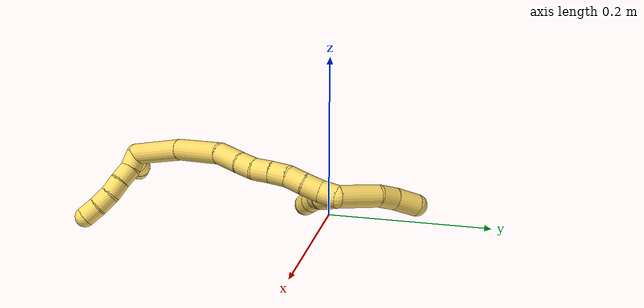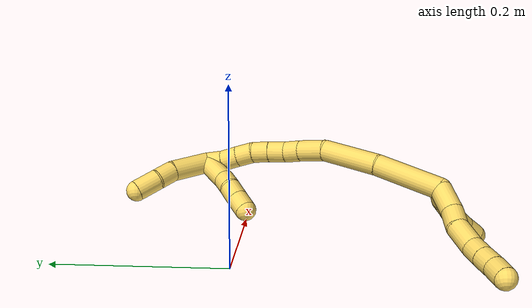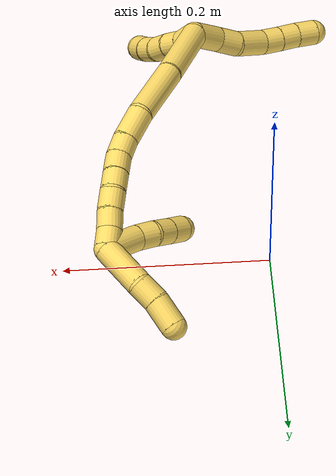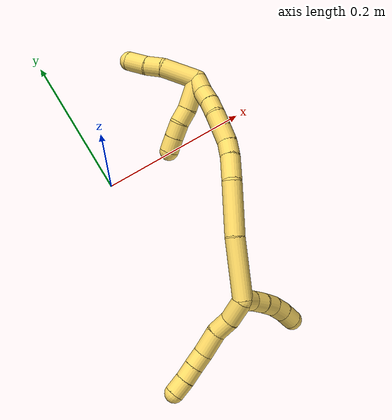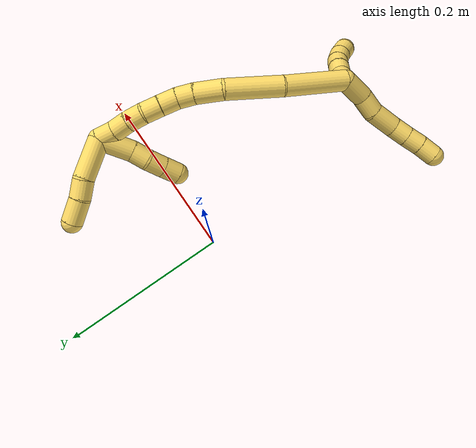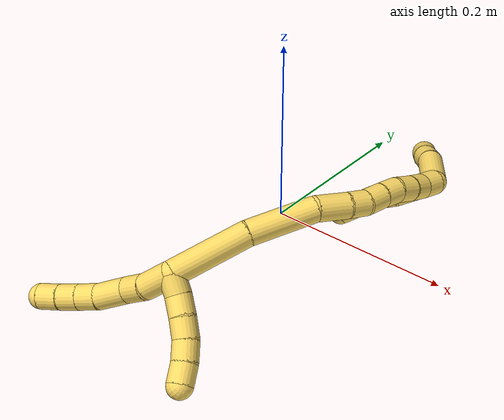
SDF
<sdf version="1.7">
 <world name="default">
  <model name="5">
   <static>0</static>
   <link name="5">
    <collision name="collision-cylinder-e_1_2_8">
     <pose>-0.003002 -0.004771 -0.014952 2.83273 -0.189 -1.09383</pose>
     <geometry><cylinder><radius>0.0125</radius><length>0.031958</length></cylinder></geometry>
     <surface>
      <friction><ode><mu>1.16</mu><mu2>1.16</mu2><slip1>0</slip1><slip2>0</slip2></ode></friction>
      <contact><ode><kp>1e+06</kp><kd>1</kd><max_vel>0</max_vel><min_depth>0.001</min_depth></ode></contact>
     </surface>
    </collision>
    <visual name="visual-cylinder-e_1_2_8">
     <pose>-0.003002 -0.004771 -0.014952 2.83273 -0.189 -1.09383</pose>
     <geometry><cylinder><radius>0.0125</radius><length>0.031958</length></cylinder></geometry>
     <material><ambient>1 0.858824 0.4 1</ambient></material>
    </visual>
    <collision name="collision-cylinder-e_2_8_9">
     <pose>-0.010518 -0.0109 -0.040922 3.01894 -0.386177 -2.53299</pose>
     <geometry><cylinder><radius>0.0125</radius><length>0.023969</length></cylinder></geometry>
     <surface>
      <friction><ode><mu>1.16</mu><mu2>1.16</mu2><slip1>0</slip1><slip2>0</slip2></ode></friction>
      <contact><ode><kp>1e+06</kp><kd>1</kd><max_vel>0</max_vel><min_depth>0.001</min_depth></ode></contact>
     </surface>
    </collision>
    <visual name="visual-cylinder-e_2_8_9">
     <pose>-0.010518 -0.0109 -0.040922 3.01894 -0.386177 -2.53299</pose>
     <geometry><cylinder><radius>0.0125</radius><length>0.023969</length></cylinder></geometry>
     <material><ambient>1 0.858824 0.4 1</ambient></material>
    </visual>
    <collision name="collision-cylinder-e_3_9_10">
     <pose>-0.021192 -0.018417 -0.065584 2.71754 -0.390413 -1.48593</pose>
     <geometry><cylinder><radius>0.0125</radius><length>0.032373</length></cylinder></geometry>
     <surface>
      <friction><ode><mu>1.16</mu><mu2>1.16</mu2><slip1>0</slip1><slip2>0</slip2></ode></friction>
      <contact><ode><kp>1e+06</kp><kd>1</kd><max_vel>0</max_vel><min_depth>0.001</min_depth></ode></contact>
     </surface>
    </collision>
    <visual name="visual-cylinder-e_3_9_10">
     <pose>-0.021192 -0.018417 -0.065584 2.71754 -0.390413 -1.48593</pose>
     <geometry><cylinder><radius>0.0125</radius><length>0.032373</length></cylinder></geometry>
     <material><ambient>1 0.858824 0.4 1</ambient></material>
    </visual>
    <collision name="collision-cylinder-e_4_10_11">
     <pose>-0.032965 -0.028349 -0.086708 2.67448 -0.590242 -1.81356</pose>
     <geometry><cylinder><radius>0.0125</radius><length>0.02017</length></cylinder></geometry>
     <surface>
      <friction><ode><mu>1.16</mu><mu2>1.16</mu2><slip1>0</slip1><slip2>0</slip2></ode></friction>
      <contact><ode><kp>1e+06</kp><kd>1</kd><max_vel>0</max_vel><min_depth>0.001</min_depth></ode></contact>
     </surface>
    </collision>
    <visual name="visual-cylinder-e_4_10_11">
     <pose>-0.032965 -0.028349 -0.086708 2.67448 -0.590242 -1.81356</pose>
     <geometry><cylinder><radius>0.0125</radius><length>0.02017</length></cylinder></geometry>
     <material><ambient>1 0.858824 0.4 1</ambient></material>
    </visual>
    <collision name="collision-cylinder-e_5_11_12">
     <pose>-0.044213 -0.036155 -0.101467 2.63555 -0.595256 -1.74083</pose>
     <geometry><cylinder><radius>0.0125</radius><length>0.020098</length></cylinder></geometry>
     <surface>
      <friction><ode><mu>1.16</mu><mu2>1.16</mu2><slip1>0</slip1><slip2>0</slip2></ode></friction>
      <contact><ode><kp>1e+06</kp><kd>1</kd><max_vel>0</max_vel><min_depth>0.001</min_depth></ode></contact>
     </surface>
    </collision>
    <visual name="visual-cylinder-e_5_11_12">
     <pose>-0.044213 -0.036155 -0.101467 2.63555 -0.595256 -1.74083</pose>
     <geometry><cylinder><radius>0.0125</radius><length>0.020098</length></cylinder></geometry>
     <material><ambient>1 0.858824 0.4 1</ambient></material>
    </visual>
    <collision name="collision-cylinder-e_6_12_6">
     <pose>-0.056169 -0.043702 -0.116651 2.72336 -0.630958 -1.98853</pose>
     <geometry><cylinder><radius>0.0125</radius><length>0.021431</length></cylinder></geometry>
     <surface>
      <friction><ode><mu>1.16</mu><mu2>1.16</mu2><slip1>0</slip1><slip2>0</slip2></ode></friction>
      <contact><ode><kp>1e+06</kp><kd>1</kd><max_vel>0</max_vel><min_depth>0.001</min_depth></ode></contact>
     </surface>
    </collision>
    <visual name="visual-cylinder-e_6_12_6">
     <pose>-0.056169 -0.043702 -0.116651 2.72336 -0.630958 -1.98853</pose>
     <geometry><cylinder><radius>0.0125</radius><length>0.021431</length></cylinder></geometry>
     <material><ambient>1 0.858824 0.4 1</ambient></material>
    </visual>
    <collision name="collision-cylinder-e_1_2_13">
     <pose>0.009454 -0.001661 -0.002805 2.60694 1.23877 2.40808</pose>
     <geometry><cylinder><radius>0.0125</radius><length>0.02</length></cylinder></geometry>
     <surface>
      <friction><ode><mu>1.16</mu><mu2>1.16</mu2><slip1>0</slip1><slip2>0</slip2></ode></friction>
      <contact><ode><kp>1e+06</kp><kd>1</kd><max_vel>0</max_vel><min_depth>0.001</min_depth></ode></contact>
     </surface>
    </collision>
    <visual name="visual-cylinder-e_1_2_13">
     <pose>0.009454 -0.001661 -0.002805 2.60694 1.23877 2.40808</pose>
     <geometry><cylinder><radius>0.0125</radius><length>0.02</length></cylinder></geometry>
     <material><ambient>1 0.858824 0.4 1</ambient></material>
    </visual>
    <collision name="collision-cylinder-e_2_13_14">
     <pose>0.027996 -0.007276 -0.006939 1.89512 1.14043 1.4569</pose>
     <geometry><cylinder><radius>0.0125</radius><length>0.02</length></cylinder></geometry>
     <surface>
      <friction><ode><mu>1.16</mu><mu2>1.16</mu2><slip1>0</slip1><slip2>0</slip2></ode></friction>
      <contact><ode><kp>1e+06</kp><kd>1</kd><max_vel>0</max_vel><min_depth>0.001</min_depth></ode></contact>
     </surface>
    </collision>
    <visual name="visual-cylinder-e_2_13_14">
     <pose>0.027996 -0.007276 -0.006939 1.89512 1.14043 1.4569</pose>
     <geometry><cylinder><radius>0.0125</radius><length>0.02</length></cylinder></geometry>
     <material><ambient>1 0.858824 0.4 1</ambient></material>
    </visual>
    <collision name="collision-cylinder-e_3_14_15">
     <pose>0.046005 -0.015083 -0.010631 2.12102 1.10187 1.66383</pose>
     <geometry><cylinder><radius>0.0125</radius><length>0.02</length></cylinder></geometry>
     <surface>
      <friction><ode><mu>1.16</mu><mu2>1.16</mu2><slip1>0</slip1><slip2>0</slip2></ode></friction>
      <contact><ode><kp>1e+06</kp><kd>1</kd><max_vel>0</max_vel><min_depth>0.001</min_depth></ode></contact>
     </surface>
    </collision>
    <visual name="visual-cylinder-e_3_14_15">
     <pose>0.046005 -0.015083 -0.010631 2.12102 1.10187 1.66383</pose>
     <geometry><cylinder><radius>0.0125</radius><length>0.02</length></cylinder></geometry>
     <material><ambient>1 0.858824 0.4 1</ambient></material>
    </visual>
    <collision name="collision-cylinder-e_4_15_16">
     <pose>0.062695 -0.024665 -0.0156 1.9976 0.889915 1.27504</pose>
     <geometry><cylinder><radius>0.0125</radius><length>0.02</length></cylinder></geometry>
     <surface>
      <friction><ode><mu>1.16</mu><mu2>1.16</mu2><slip1>0</slip1><slip2>0</slip2></ode></friction>
      <contact><ode><kp>1e+06</kp><kd>1</kd><max_vel>0</max_vel><min_depth>0.001</min_depth></ode></contact>
     </surface>
    </collision>
    <visual name="visual-cylinder-e_4_15_16">
     <pose>0.062695 -0.024665 -0.0156 1.9976 0.889915 1.27504</pose>
     <geometry><cylinder><radius>0.0125</radius><length>0.02</length></cylinder></geometry>
     <material><ambient>1 0.858824 0.4 1</ambient></material>
    </visual>
    <collision name="collision-cylinder-e_5_16_5">
     <pose>0.077197 -0.037083 -0.021363 2.01193 0.738481 1.09648</pose>
     <geometry><cylinder><radius>0.0125</radius><length>0.02</length></cylinder></geometry>
     <surface>
      <friction><ode><mu>1.16</mu><mu2>1.16</mu2><slip1>0</slip1><slip2>0</slip2></ode></friction>
      <contact><ode><kp>1e+06</kp><kd>1</kd><max_vel>0</max_vel><min_depth>0.001</min_depth></ode></contact>
     </surface>
    </collision>
    <visual name="visual-cylinder-e_5_16_5">
     <pose>0.077197 -0.037083 -0.021363 2.01193 0.738481 1.09648</pose>
     <geometry><cylinder><radius>0.0125</radius><length>0.02</length></cylinder></geometry>
     <material><ambient>1 0.858824 0.4 1</ambient></material>
    </visual>
    <collision name="collision-cylinder-e_1_2_17">
     <pose>0.004543 0.033744 0.018342 -1.0729 0.117733 -0.070058</pose>
     <geometry><cylinder><radius>0.0125</radius><length>0.077348</length></cylinder></geometry>
     <surface>
      <friction><ode><mu>1.16</mu><mu2>1.16</mu2><slip1>0</slip1><slip2>0</slip2></ode></friction>
      <contact><ode><kp>1e+06</kp><kd>1</kd><max_vel>0</max_vel><min_depth>0.001</min_depth></ode></contact>
     </surface>
    </collision>
    <visual name="visual-cylinder-e_1_2_17">
     <pose>0.004543 0.033744 0.018342 -1.0729 0.117733 -0.070058</pose>
     <geometry><cylinder><radius>0.0125</radius><length>0.077348</length></cylinder></geometry>
     <material><ambient>1 0.858824 0.4 1</ambient></material>
    </visual>
    <collision name="collision-cylinder-e_2_17_18">
     <pose>0.017642 0.096821 0.051384 -1.10626 0.255096 -0.158032</pose>
     <geometry><cylinder><radius>0.0125</radius><length>0.067817</length></cylinder></geometry>
     <surface>
      <friction><ode><mu>1.16</mu><mu2>1.16</mu2><slip1>0</slip1><slip2>0</slip2></ode></friction>
      <contact><ode><kp>1e+06</kp><kd>1</kd><max_vel>0</max_vel><min_depth>0.001</min_depth></ode></contact>
     </surface>
    </collision>
    <visual name="visual-cylinder-e_2_17_18">
     <pose>0.017642 0.096821 0.051384 -1.10626 0.255096 -0.158032</pose>
     <geometry><cylinder><radius>0.0125</radius><length>0.067817</length></cylinder></geometry>
     <material><ambient>1 0.858824 0.4 1</ambient></material>
    </visual>
    <collision name="collision-cylinder-e_3_18_19">
     <pose>0.033153 0.140636 0.069904 -1.31282 0.43474 -0.337059</pose>
     <geometry><cylinder><radius>0.0125</radius><length>0.033024</length></cylinder></geometry>
     <surface>
      <friction><ode><mu>1.16</mu><mu2>1.16</mu2><slip1>0</slip1><slip2>0</slip2></ode></friction>
      <contact><ode><kp>1e+06</kp><kd>1</kd><max_vel>0</max_vel><min_depth>0.001</min_depth></ode></contact>
     </surface>
    </collision>
    <visual name="visual-cylinder-e_3_18_19">
     <pose>0.033153 0.140636 0.069904 -1.31282 0.43474 -0.337059</pose>
     <geometry><cylinder><radius>0.0125</radius><length>0.033024</length></cylinder></geometry>
     <material><ambient>1 0.858824 0.4 1</ambient></material>
    </visual>
    <collision name="collision-cylinder-e_4_19_20">
     <pose>0.043746 0.164507 0.075158 -1.41929 0.365835 -0.315138</pose>
     <geometry><cylinder><radius>0.0125</radius><length>0.020347</length></cylinder></geometry>
     <surface>
      <friction><ode><mu>1.16</mu><mu2>1.16</mu2><slip1>0</slip1><slip2>0</slip2></ode></friction>
      <contact><ode><kp>1e+06</kp><kd>1</kd><max_vel>0</max_vel><min_depth>0.001</min_depth></ode></contact>
     </surface>
    </collision>
    <visual name="visual-cylinder-e_4_19_20">
     <pose>0.043746 0.164507 0.075158 -1.41929 0.365835 -0.315138</pose>
     <geometry><cylinder><radius>0.0125</radius><length>0.020347</length></cylinder></geometry>
     <material><ambient>1 0.858824 0.4 1</ambient></material>
    </visual>
    <collision name="collision-cylinder-e_5_20_21">
     <pose>0.04873 0.184136 0.077895 -1.44425 0.12959 -0.114182</pose>
     <geometry><cylinder><radius>0.0125</radius><length>0.020815</length></cylinder></geometry>
     <surface>
      <friction><ode><mu>1.16</mu><mu2>1.16</mu2><slip1>0</slip1><slip2>0</slip2></ode></friction>
      <contact><ode><kp>1e+06</kp><kd>1</kd><max_vel>0</max_vel><min_depth>0.001</min_depth></ode></contact>
     </surface>
    </collision>
    <visual name="visual-cylinder-e_5_20_21">
     <pose>0.04873 0.184136 0.077895 -1.44425 0.12959 -0.114182</pose>
     <geometry><cylinder><radius>0.0125</radius><length>0.020815</length></cylinder></geometry>
     <material><ambient>1 0.858824 0.4 1</ambient></material>
    </visual>
    <collision name="collision-cylinder-e_6_21_22">
     <pose>0.051686 0.204289 0.080051 -1.48488 0.160462 -0.147287</pose>
     <geometry><cylinder><radius>0.0125</radius><length>0.020164</length></cylinder></geometry>
     <surface>
      <friction><ode><mu>1.16</mu><mu2>1.16</mu2><slip1>0</slip1><slip2>0</slip2></ode></friction>
      <contact><ode><kp>1e+06</kp><kd>1</kd><max_vel>0</max_vel><min_depth>0.001</min_depth></ode></contact>
     </surface>
    </collision>
    <visual name="visual-cylinder-e_6_21_22">
     <pose>0.051686 0.204289 0.080051 -1.48488 0.160462 -0.147287</pose>
     <geometry><cylinder><radius>0.0125</radius><length>0.020164</length></cylinder></geometry>
     <material><ambient>1 0.858824 0.4 1</ambient></material>
    </visual>
    <collision name="collision-cylinder-e_7_22_23">
     <pose>0.056279 0.223921 0.080092 -1.65432 0.296796 -0.322253</pose>
     <geometry><cylinder><radius>0.0125</radius><length>0.020391</length></cylinder></geometry>
     <surface>
      <friction><ode><mu>1.16</mu><mu2>1.16</mu2><slip1>0</slip1><slip2>0</slip2></ode></friction>
      <contact><ode><kp>1e+06</kp><kd>1</kd><max_vel>0</max_vel><min_depth>0.001</min_depth></ode></contact>
     </surface>
    </collision>
    <visual name="visual-cylinder-e_7_22_23">
     <pose>0.056279 0.223921 0.080092 -1.65432 0.296796 -0.322253</pose>
     <geometry><cylinder><radius>0.0125</radius><length>0.020391</length></cylinder></geometry>
     <material><ambient>1 0.858824 0.4 1</ambient></material>
    </visual>
    <collision name="collision-cylinder-e_8_23_24">
     <pose>0.061432 0.243291 0.077695 -1.73331 0.218389 -0.25672</pose>
     <geometry><cylinder><radius>0.0125</radius><length>0.020043</length></cylinder></geometry>
     <surface>
      <friction><ode><mu>1.16</mu><mu2>1.16</mu2><slip1>0</slip1><slip2>0</slip2></ode></friction>
      <contact><ode><kp>1e+06</kp><kd>1</kd><max_vel>0</max_vel><min_depth>0.001</min_depth></ode></contact>
     </surface>
    </collision>
    <visual name="visual-cylinder-e_8_23_24">
     <pose>0.061432 0.243291 0.077695 -1.73331 0.218389 -0.25672</pose>
     <geometry><cylinder><radius>0.0125</radius><length>0.020043</length></cylinder></geometry>
     <material><ambient>1 0.858824 0.4 1</ambient></material>
    </visual>
    <collision name="collision-cylinder-e_9_24_1">
     <pose>0.065485 0.262791 0.076306 -1.55119 0.188885 -0.185239</pose>
     <geometry><cylinder><radius>0.0125</radius><length>0.020052</length></cylinder></geometry>
     <surface>
      <friction><ode><mu>1.16</mu><mu2>1.16</mu2><slip1>0</slip1><slip2>0</slip2></ode></friction>
      <contact><ode><kp>1e+06</kp><kd>1</kd><max_vel>0</max_vel><min_depth>0.001</min_depth></ode></contact>
     </surface>
    </collision>
    <visual name="visual-cylinder-e_9_24_1">
     <pose>0.065485 0.262791 0.076306 -1.55119 0.188885 -0.185239</pose>
     <geometry><cylinder><radius>0.0125</radius><length>0.020052</length></cylinder></geometry>
     <material><ambient>1 0.858824 0.4 1</ambient></material>
    </visual>
    <collision name="collision-cylinder-e_1_1_25">
     <pose>0.060734 0.261097 0.061584 2.48308 -0.338242 -0.926851</pose>
     <geometry><cylinder><radius>0.0125</radius><length>0.039982</length></cylinder></geometry>
     <surface>
      <friction><ode><mu>1.16</mu><mu2>1.16</mu2><slip1>0</slip1><slip2>0</slip2></ode></friction>
      <contact><ode><kp>1e+06</kp><kd>1</kd><max_vel>0</max_vel><min_depth>0.001</min_depth></ode></contact>
     </surface>
    </collision>
    <visual name="visual-cylinder-e_1_1_25">
     <pose>0.060734 0.261097 0.061584 2.48308 -0.338242 -0.926851</pose>
     <geometry><cylinder><radius>0.0125</radius><length>0.039982</length></cylinder></geometry>
     <material><ambient>1 0.858824 0.4 1</ambient></material>
    </visual>
    <collision name="collision-cylinder-e_2_25_26">
     <pose>0.049313 0.24519 0.039045 2.62137 -0.498953 -1.52721</pose>
     <geometry><cylinder><radius>0.0125</radius><length>0.020013</length></cylinder></geometry>
     <surface>
      <friction><ode><mu>1.16</mu><mu2>1.16</mu2><slip1>0</slip1><slip2>0</slip2></ode></friction>
      <contact><ode><kp>1e+06</kp><kd>1</kd><max_vel>0</max_vel><min_depth>0.001</min_depth></ode></contact>
     </surface>
    </collision>
    <visual name="visual-cylinder-e_2_25_26">
     <pose>0.049313 0.24519 0.039045 2.62137 -0.498953 -1.52721</pose>
     <geometry><cylinder><radius>0.0125</radius><length>0.020013</length></cylinder></geometry>
     <material><ambient>1 0.858824 0.4 1</ambient></material>
    </visual>
    <collision name="collision-cylinder-e_3_26_27">
     <pose>0.042122 0.236001 0.022992 2.62201 -0.242569 -0.859894</pose>
     <geometry><cylinder><radius>0.0125</radius><length>0.020004</length></cylinder></geometry>
     <surface>
      <friction><ode><mu>1.16</mu><mu2>1.16</mu2><slip1>0</slip1><slip2>0</slip2></ode></friction>
      <contact><ode><kp>1e+06</kp><kd>1</kd><max_vel>0</max_vel><min_depth>0.001</min_depth></ode></contact>
     </surface>
    </collision>
    <visual name="visual-cylinder-e_3_26_27">
     <pose>0.042122 0.236001 0.022992 2.62201 -0.242569 -0.859894</pose>
     <geometry><cylinder><radius>0.0125</radius><length>0.020004</length></cylinder></geometry>
     <material><ambient>1 0.858824 0.4 1</ambient></material>
    </visual>
    <collision name="collision-cylinder-e_4_27_4">
     <pose>0.037369 0.226176 0.006231 2.60079 -0.237254 -0.812167</pose>
     <geometry><cylinder><radius>0.0125</radius><length>0.020001</length></cylinder></geometry>
     <surface>
      <friction><ode><mu>1.16</mu><mu2>1.16</mu2><slip1>0</slip1><slip2>0</slip2></ode></friction>
      <contact><ode><kp>1e+06</kp><kd>1</kd><max_vel>0</max_vel><min_depth>0.001</min_depth></ode></contact>
     </surface>
    </collision>
    <visual name="visual-cylinder-e_4_27_4">
     <pose>0.037369 0.226176 0.006231 2.60079 -0.237254 -0.812167</pose>
     <geometry><cylinder><radius>0.0125</radius><length>0.020001</length></cylinder></geometry>
     <material><ambient>1 0.858824 0.4 1</ambient></material>
    </visual>
    <collision name="collision-cylinder-e_1_1_28">
     <pose>0.05701 0.292264 0.066869 -2.02691 -0.442474 0.692668</pose>
     <geometry><cylinder><radius>0.0125</radius><length>0.048384</length></cylinder></geometry>
     <surface>
      <friction><ode><mu>1.16</mu><mu2>1.16</mu2><slip1>0</slip1><slip2>0</slip2></ode></friction>
      <contact><ode><kp>1e+06</kp><kd>1</kd><max_vel>0</max_vel><min_depth>0.001</min_depth></ode></contact>
     </surface>
    </collision>
    <visual name="visual-cylinder-e_1_1_28">
     <pose>0.05701 0.292264 0.066869 -2.02691 -0.442474 0.692668</pose>
     <geometry><cylinder><radius>0.0125</radius><length>0.048384</length></cylinder></geometry>
     <material><ambient>1 0.858824 0.4 1</ambient></material>
    </visual>
    <collision name="collision-cylinder-e_2_28_29">
     <pose>0.042609 0.319883 0.050345 -2.28262 -0.36572 0.767501</pose>
     <geometry><cylinder><radius>0.0125</radius><length>0.022604</length></cylinder></geometry>
     <surface>
      <friction><ode><mu>1.16</mu><mu2>1.16</mu2><slip1>0</slip1><slip2>0</slip2></ode></friction>
      <contact><ode><kp>1e+06</kp><kd>1</kd><max_vel>0</max_vel><min_depth>0.001</min_depth></ode></contact>
     </surface>
    </collision>
    <visual name="visual-cylinder-e_2_28_29">
     <pose>0.042609 0.319883 0.050345 -2.28262 -0.36572 0.767501</pose>
     <geometry><cylinder><radius>0.0125</radius><length>0.022604</length></cylinder></geometry>
     <material><ambient>1 0.858824 0.4 1</ambient></material>
    </visual>
    <collision name="collision-cylinder-e_3_29_3">
     <pose>0.035521 0.339394 0.035178 -2.1936 -0.211581 0.408217</pose>
     <geometry><cylinder><radius>0.0125</radius><length>0.029012</length></cylinder></geometry>
     <surface>
      <friction><ode><mu>1.16</mu><mu2>1.16</mu2><slip1>0</slip1><slip2>0</slip2></ode></friction>
      <contact><ode><kp>1e+06</kp><kd>1</kd><max_vel>0</max_vel><min_depth>0.001</min_depth></ode></contact>
     </surface>
    </collision>
    <visual name="visual-cylinder-e_3_29_3">
     <pose>0.035521 0.339394 0.035178 -2.1936 -0.211581 0.408217</pose>
     <geometry><cylinder><radius>0.0125</radius><length>0.029012</length></cylinder></geometry>
     <material><ambient>1 0.858824 0.4 1</ambient></material>
    </visual>
    <collision name="collision-sphere-3">
     <pose>0.032475 0.350914 0.026905 0 -0 0</pose>
     <geometry><sphere><radius>0.0125</radius></sphere></geometry>
     <surface>
      <friction><ode><mu>1.16</mu><mu2>1.16</mu2><slip1>0</slip1><slip2>0</slip2></ode></friction>
      <contact><ode><kp>1e+06</kp><kd>1</kd><max_vel>0</max_vel><min_depth>0.001</min_depth></ode></contact>
     </surface>
    </collision>
    <visual name="visual-sphere-3">
     <pose>0.032475 0.350914 0.026905 0 -0 0</pose>
     <geometry><sphere><radius>0.0125</radius></sphere></geometry>
     <material><ambient>1 0.858824 0.4 1</ambient></material>
    </visual>
    <collision name="collision-sphere-29">
     <pose>0.038568 0.327875 0.043451 0 -0 0</pose>
     <geometry><sphere><radius>0.0125</radius></sphere></geometry>
     <surface>
      <friction><ode><mu>1.16</mu><mu2>1.16</mu2><slip1>0</slip1><slip2>0</slip2></ode></friction>
      <contact><ode><kp>1e+06</kp><kd>1</kd><max_vel>0</max_vel><min_depth>0.001</min_depth></ode></contact>
     </surface>
    </collision>
    <visual name="visual-sphere-29">
     <pose>0.038568 0.327875 0.043451 0 -0 0</pose>
     <geometry><sphere><radius>0.0125</radius></sphere></geometry>
     <material><ambient>1 0.858824 0.4 1</ambient></material>
    </visual>
    <collision name="collision-sphere-28">
     <pose>0.046651 0.311891 0.05724 0 -0 0</pose>
     <geometry><sphere><radius>0.0125</radius></sphere></geometry>
     <surface>
      <friction><ode><mu>1.16</mu><mu2>1.16</mu2><slip1>0</slip1><slip2>0</slip2></ode></friction>
      <contact><ode><kp>1e+06</kp><kd>1</kd><max_vel>0</max_vel><min_depth>0.001</min_depth></ode></contact>
     </surface>
    </collision>
    <visual name="visual-sphere-28">
     <pose>0.046651 0.311891 0.05724 0 -0 0</pose>
     <geometry><sphere><radius>0.0125</radius></sphere></geometry>
     <material><ambient>1 0.858824 0.4 1</ambient></material>
    </visual>
    <collision name="collision-sphere-4">
     <pose>0.035019 0.221172 -0.002102 0 -0 0</pose>
     <geometry><sphere><radius>0.0125</radius></sphere></geometry>
     <surface>
      <friction><ode><mu>1.16</mu><mu2>1.16</mu2><slip1>0</slip1><slip2>0</slip2></ode></friction>
      <contact><ode><kp>1e+06</kp><kd>1</kd><max_vel>0</max_vel><min_depth>0.001</min_depth></ode></contact>
     </surface>
    </collision>
    <visual name="visual-sphere-4">
     <pose>0.035019 0.221172 -0.002102 0 -0 0</pose>
     <geometry><sphere><radius>0.0125</radius></sphere></geometry>
     <material><ambient>1 0.858824 0.4 1</ambient></material>
    </visual>
    <collision name="collision-sphere-27">
     <pose>0.03972 0.23118 0.014565 0 -0 0</pose>
     <geometry><sphere><radius>0.0125</radius></sphere></geometry>
     <surface>
      <friction><ode><mu>1.16</mu><mu2>1.16</mu2><slip1>0</slip1><slip2>0</slip2></ode></friction>
      <contact><ode><kp>1e+06</kp><kd>1</kd><max_vel>0</max_vel><min_depth>0.001</min_depth></ode></contact>
     </surface>
    </collision>
    <visual name="visual-sphere-27">
     <pose>0.03972 0.23118 0.014565 0 -0 0</pose>
     <geometry><sphere><radius>0.0125</radius></sphere></geometry>
     <material><ambient>1 0.858824 0.4 1</ambient></material>
    </visual>
    <collision name="collision-sphere-26">
     <pose>0.044525 0.240822 0.03142 0 -0 0</pose>
     <geometry><sphere><radius>0.0125</radius></sphere></geometry>
     <surface>
      <friction><ode><mu>1.16</mu><mu2>1.16</mu2><slip1>0</slip1><slip2>0</slip2></ode></friction>
      <contact><ode><kp>1e+06</kp><kd>1</kd><max_vel>0</max_vel><min_depth>0.001</min_depth></ode></contact>
     </surface>
    </collision>
    <visual name="visual-sphere-26">
     <pose>0.044525 0.240822 0.03142 0 -0 0</pose>
     <geometry><sphere><radius>0.0125</radius></sphere></geometry>
     <material><ambient>1 0.858824 0.4 1</ambient></material>
    </visual>
    <collision name="collision-sphere-25">
     <pose>0.054101 0.249557 0.046669 0 -0 0</pose>
     <geometry><sphere><radius>0.0125</radius></sphere></geometry>
     <surface>
      <friction><ode><mu>1.16</mu><mu2>1.16</mu2><slip1>0</slip1><slip2>0</slip2></ode></friction>
      <contact><ode><kp>1e+06</kp><kd>1</kd><max_vel>0</max_vel><min_depth>0.001</min_depth></ode></contact>
     </surface>
    </collision>
    <visual name="visual-sphere-25">
     <pose>0.054101 0.249557 0.046669 0 -0 0</pose>
     <geometry><sphere><radius>0.0125</radius></sphere></geometry>
     <material><ambient>1 0.858824 0.4 1</ambient></material>
    </visual>
    <collision name="collision-sphere-1">
     <pose>0.067368 0.272637 0.076499 0 -0 0</pose>
     <geometry><sphere><radius>0.0125</radius></sphere></geometry>
     <surface>
      <friction><ode><mu>1.16</mu><mu2>1.16</mu2><slip1>0</slip1><slip2>0</slip2></ode></friction>
      <contact><ode><kp>1e+06</kp><kd>1</kd><max_vel>0</max_vel><min_depth>0.001</min_depth></ode></contact>
     </surface>
    </collision>
    <visual name="visual-sphere-1">
     <pose>0.067368 0.272637 0.076499 0 -0 0</pose>
     <geometry><sphere><radius>0.0125</radius></sphere></geometry>
     <material><ambient>1 0.858824 0.4 1</ambient></material>
    </visual>
    <collision name="collision-sphere-24">
     <pose>0.063603 0.252945 0.076113 0 -0 0</pose>
     <geometry><sphere><radius>0.0125</radius></sphere></geometry>
     <surface>
      <friction><ode><mu>1.16</mu><mu2>1.16</mu2><slip1>0</slip1><slip2>0</slip2></ode></friction>
      <contact><ode><kp>1e+06</kp><kd>1</kd><max_vel>0</max_vel><min_depth>0.001</min_depth></ode></contact>
     </surface>
    </collision>
    <visual name="visual-sphere-24">
     <pose>0.063603 0.252945 0.076113 0 -0 0</pose>
     <geometry><sphere><radius>0.0125</radius></sphere></geometry>
     <material><ambient>1 0.858824 0.4 1</ambient></material>
    </visual>
    <collision name="collision-sphere-23">
     <pose>0.059261 0.233637 0.079278 0 -0 0</pose>
     <geometry><sphere><radius>0.0125</radius></sphere></geometry>
     <surface>
      <friction><ode><mu>1.16</mu><mu2>1.16</mu2><slip1>0</slip1><slip2>0</slip2></ode></friction>
      <contact><ode><kp>1e+06</kp><kd>1</kd><max_vel>0</max_vel><min_depth>0.001</min_depth></ode></contact>
     </surface>
    </collision>
    <visual name="visual-sphere-23">
     <pose>0.059261 0.233637 0.079278 0 -0 0</pose>
     <geometry><sphere><radius>0.0125</radius></sphere></geometry>
     <material><ambient>1 0.858824 0.4 1</ambient></material>
    </visual>
    <collision name="collision-sphere-22">
     <pose>0.053297 0.214205 0.080905 0 -0 0</pose>
     <geometry><sphere><radius>0.0125</radius></sphere></geometry>
     <surface>
      <friction><ode><mu>1.16</mu><mu2>1.16</mu2><slip1>0</slip1><slip2>0</slip2></ode></friction>
      <contact><ode><kp>1e+06</kp><kd>1</kd><max_vel>0</max_vel><min_depth>0.001</min_depth></ode></contact>
     </surface>
    </collision>
    <visual name="visual-sphere-22">
     <pose>0.053297 0.214205 0.080905 0 -0 0</pose>
     <geometry><sphere><radius>0.0125</radius></sphere></geometry>
     <material><ambient>1 0.858824 0.4 1</ambient></material>
    </visual>
    <collision name="collision-sphere-21">
     <pose>0.050075 0.194374 0.079197 0 -0 0</pose>
     <geometry><sphere><radius>0.0125</radius></sphere></geometry>
     <surface>
      <friction><ode><mu>1.16</mu><mu2>1.16</mu2><slip1>0</slip1><slip2>0</slip2></ode></friction>
      <contact><ode><kp>1e+06</kp><kd>1</kd><max_vel>0</max_vel><min_depth>0.001</min_depth></ode></contact>
     </surface>
    </collision>
    <visual name="visual-sphere-21">
     <pose>0.050075 0.194374 0.079197 0 -0 0</pose>
     <geometry><sphere><radius>0.0125</radius></sphere></geometry>
     <material><ambient>1 0.858824 0.4 1</ambient></material>
    </visual>
    <collision name="collision-sphere-12">
     <pose>-0.049848 -0.040188 -0.108744 0 -0 0</pose>
     <geometry><sphere><radius>0.0125</radius></sphere></geometry>
     <surface>
      <friction><ode><mu>1.16</mu><mu2>1.16</mu2><slip1>0</slip1><slip2>0</slip2></ode></friction>
      <contact><ode><kp>1e+06</kp><kd>1</kd><max_vel>0</max_vel><min_depth>0.001</min_depth></ode></contact>
     </surface>
    </collision>
    <visual name="visual-sphere-12">
     <pose>-0.049848 -0.040188 -0.108744 0 -0 0</pose>
     <geometry><sphere><radius>0.0125</radius></sphere></geometry>
     <material><ambient>1 0.858824 0.4 1</ambient></material>
    </visual>
    <collision name="collision-sphere-11">
     <pose>-0.038578 -0.032122 -0.094189 0 -0 0</pose>
     <geometry><sphere><radius>0.0125</radius></sphere></geometry>
     <surface>
      <friction><ode><mu>1.16</mu><mu2>1.16</mu2><slip1>0</slip1><slip2>0</slip2></ode></friction>
      <contact><ode><kp>1e+06</kp><kd>1</kd><max_vel>0</max_vel><min_depth>0.001</min_depth></ode></contact>
     </surface>
    </collision>
    <visual name="visual-sphere-11">
     <pose>-0.038578 -0.032122 -0.094189 0 -0 0</pose>
     <geometry><sphere><radius>0.0125</radius></sphere></geometry>
     <material><ambient>1 0.858824 0.4 1</ambient></material>
    </visual>
    <collision name="collision-sphere-10">
     <pose>-0.027352 -0.024576 -0.079226 0 -0 0</pose>
     <geometry><sphere><radius>0.0125</radius></sphere></geometry>
     <surface>
      <friction><ode><mu>1.16</mu><mu2>1.16</mu2><slip1>0</slip1><slip2>0</slip2></ode></friction>
      <contact><ode><kp>1e+06</kp><kd>1</kd><max_vel>0</max_vel><min_depth>0.001</min_depth></ode></contact>
     </surface>
    </collision>
    <visual name="visual-sphere-10">
     <pose>-0.027352 -0.024576 -0.079226 0 -0 0</pose>
     <geometry><sphere><radius>0.0125</radius></sphere></geometry>
     <material><ambient>1 0.858824 0.4 1</ambient></material>
    </visual>
    <collision name="collision-sphere-9">
     <pose>-0.015032 -0.012258 -0.051941 0 -0 0</pose>
     <geometry><sphere><radius>0.0125</radius></sphere></geometry>
     <surface>
      <friction><ode><mu>1.16</mu><mu2>1.16</mu2><slip1>0</slip1><slip2>0</slip2></ode></friction>
      <contact><ode><kp>1e+06</kp><kd>1</kd><max_vel>0</max_vel><min_depth>0.001</min_depth></ode></contact>
     </surface>
    </collision>
    <visual name="visual-sphere-9">
     <pose>-0.015032 -0.012258 -0.051941 0 -0 0</pose>
     <geometry><sphere><radius>0.0125</radius></sphere></geometry>
     <material><ambient>1 0.858824 0.4 1</ambient></material>
    </visual>
    <collision name="collision-sphere-2">
     <geometry><sphere><radius>0.0125</radius></sphere></geometry>
     <surface>
      <friction><ode><mu>1.16</mu><mu2>1.16</mu2><slip1>0</slip1><slip2>0</slip2></ode></friction>
      <contact><ode><kp>1e+06</kp><kd>1</kd><max_vel>0</max_vel><min_depth>0.001</min_depth></ode></contact>
     </surface>
    </collision>
    <visual name="visual-sphere-2">
     <geometry><sphere><radius>0.0125</radius></sphere></geometry>
     <material><ambient>1 0.858824 0.4 1</ambient></material>
    </visual>
    <collision name="collision-sphere-19">
     <pose>0.040107 0.155116 0.073725 0 -0 0</pose>
     <geometry><sphere><radius>0.0125</radius></sphere></geometry>
     <surface>
      <friction><ode><mu>1.16</mu><mu2>1.16</mu2><slip1>0</slip1><slip2>0</slip2></ode></friction>
      <contact><ode><kp>1e+06</kp><kd>1</kd><max_vel>0</max_vel><min_depth>0.001</min_depth></ode></contact>
     </surface>
    </collision>
    <visual name="visual-sphere-19">
     <pose>0.040107 0.155116 0.073725 0 -0 0</pose>
     <geometry><sphere><radius>0.0125</radius></sphere></geometry>
     <material><ambient>1 0.858824 0.4 1</ambient></material>
    </visual>
    <collision name="collision-sphere-8">
     <pose>-0.006004 -0.009541 -0.029904 0 -0 0</pose>
     <geometry><sphere><radius>0.0125</radius></sphere></geometry>
     <surface>
      <friction><ode><mu>1.16</mu><mu2>1.16</mu2><slip1>0</slip1><slip2>0</slip2></ode></friction>
      <contact><ode><kp>1e+06</kp><kd>1</kd><max_vel>0</max_vel><min_depth>0.001</min_depth></ode></contact>
     </surface>
    </collision>
    <visual name="visual-sphere-8">
     <pose>-0.006004 -0.009541 -0.029904 0 -0 0</pose>
     <geometry><sphere><radius>0.0125</radius></sphere></geometry>
     <material><ambient>1 0.858824 0.4 1</ambient></material>
    </visual>
    <collision name="collision-sphere-6">
     <pose>-0.062491 -0.047217 -0.124558 0 -0 0</pose>
     <geometry><sphere><radius>0.0125</radius></sphere></geometry>
     <surface>
      <friction><ode><mu>1.16</mu><mu2>1.16</mu2><slip1>0</slip1><slip2>0</slip2></ode></friction>
      <contact><ode><kp>1e+06</kp><kd>1</kd><max_vel>0</max_vel><min_depth>0.001</min_depth></ode></contact>
     </surface>
    </collision>
    <visual name="visual-sphere-6">
     <pose>-0.062491 -0.047217 -0.124558 0 -0 0</pose>
     <geometry><sphere><radius>0.0125</radius></sphere></geometry>
     <material><ambient>1 0.858824 0.4 1</ambient></material>
    </visual>
    <collision name="collision-sphere-13">
     <pose>0.018908 -0.003322 -0.005609 0 -0 0</pose>
     <geometry><sphere><radius>0.0125</radius></sphere></geometry>
     <surface>
      <friction><ode><mu>1.16</mu><mu2>1.16</mu2><slip1>0</slip1><slip2>0</slip2></ode></friction>
      <contact><ode><kp>1e+06</kp><kd>1</kd><max_vel>0</max_vel><min_depth>0.001</min_depth></ode></contact>
     </surface>
    </collision>
    <visual name="visual-sphere-13">
     <pose>0.018908 -0.003322 -0.005609 0 -0 0</pose>
     <geometry><sphere><radius>0.0125</radius></sphere></geometry>
     <material><ambient>1 0.858824 0.4 1</ambient></material>
    </visual>
    <collision name="collision-sphere-14">
     <pose>0.037084 -0.011231 -0.008268 0 -0 0</pose>
     <geometry><sphere><radius>0.0125</radius></sphere></geometry>
     <surface>
      <friction><ode><mu>1.16</mu><mu2>1.16</mu2><slip1>0</slip1><slip2>0</slip2></ode></friction>
      <contact><ode><kp>1e+06</kp><kd>1</kd><max_vel>0</max_vel><min_depth>0.001</min_depth></ode></contact>
     </surface>
    </collision>
    <visual name="visual-sphere-14">
     <pose>0.037084 -0.011231 -0.008268 0 -0 0</pose>
     <geometry><sphere><radius>0.0125</radius></sphere></geometry>
     <material><ambient>1 0.858824 0.4 1</ambient></material>
    </visual>
    <collision name="collision-sphere-15">
     <pose>0.054925 -0.018935 -0.012994 0 -0 0</pose>
     <geometry><sphere><radius>0.0125</radius></sphere></geometry>
     <surface>
      <friction><ode><mu>1.16</mu><mu2>1.16</mu2><slip1>0</slip1><slip2>0</slip2></ode></friction>
      <contact><ode><kp>1e+06</kp><kd>1</kd><max_vel>0</max_vel><min_depth>0.001</min_depth></ode></contact>
     </surface>
    </collision>
    <visual name="visual-sphere-15">
     <pose>0.054925 -0.018935 -0.012994 0 -0 0</pose>
     <geometry><sphere><radius>0.0125</radius></sphere></geometry>
     <material><ambient>1 0.858824 0.4 1</ambient></material>
    </visual>
    <collision name="collision-sphere-16">
     <pose>0.070465 -0.030396 -0.018206 0 -0 0</pose>
     <geometry><sphere><radius>0.0125</radius></sphere></geometry>
     <surface>
      <friction><ode><mu>1.16</mu><mu2>1.16</mu2><slip1>0</slip1><slip2>0</slip2></ode></friction>
      <contact><ode><kp>1e+06</kp><kd>1</kd><max_vel>0</max_vel><min_depth>0.001</min_depth></ode></contact>
     </surface>
    </collision>
    <visual name="visual-sphere-16">
     <pose>0.070465 -0.030396 -0.018206 0 -0 0</pose>
     <geometry><sphere><radius>0.0125</radius></sphere></geometry>
     <material><ambient>1 0.858824 0.4 1</ambient></material>
    </visual>
    <collision name="collision-sphere-5">
     <pose>0.083929 -0.04377 -0.024521 0 -0 0</pose>
     <geometry><sphere><radius>0.0125</radius></sphere></geometry>
     <surface>
      <friction><ode><mu>1.16</mu><mu2>1.16</mu2><slip1>0</slip1><slip2>0</slip2></ode></friction>
      <contact><ode><kp>1e+06</kp><kd>1</kd><max_vel>0</max_vel><min_depth>0.001</min_depth></ode></contact>
     </surface>
    </collision>
    <visual name="visual-sphere-5">
     <pose>0.083929 -0.04377 -0.024521 0 -0 0</pose>
     <geometry><sphere><radius>0.0125</radius></sphere></geometry>
     <material><ambient>1 0.858824 0.4 1</ambient></material>
    </visual>
    <collision name="collision-sphere-17">
     <pose>0.009085 0.067487 0.036684 0 -0 0</pose>
     <geometry><sphere><radius>0.0125</radius></sphere></geometry>
     <surface>
      <friction><ode><mu>1.16</mu><mu2>1.16</mu2><slip1>0</slip1><slip2>0</slip2></ode></friction>
      <contact><ode><kp>1e+06</kp><kd>1</kd><max_vel>0</max_vel><min_depth>0.001</min_depth></ode></contact>
     </surface>
    </collision>
    <visual name="visual-sphere-17">
     <pose>0.009085 0.067487 0.036684 0 -0 0</pose>
     <geometry><sphere><radius>0.0125</radius></sphere></geometry>
     <material><ambient>1 0.858824 0.4 1</ambient></material>
    </visual>
    <collision name="collision-sphere-18">
     <pose>0.026198 0.126155 0.066083 0 -0 0</pose>
     <geometry><sphere><radius>0.0125</radius></sphere></geometry>
     <surface>
      <friction><ode><mu>1.16</mu><mu2>1.16</mu2><slip1>0</slip1><slip2>0</slip2></ode></friction>
      <contact><ode><kp>1e+06</kp><kd>1</kd><max_vel>0</max_vel><min_depth>0.001</min_depth></ode></contact>
     </surface>
    </collision>
    <visual name="visual-sphere-18">
     <pose>0.026198 0.126155 0.066083 0 -0 0</pose>
     <geometry><sphere><radius>0.0125</radius></sphere></geometry>
     <material><ambient>1 0.858824 0.4 1</ambient></material>
    </visual>
    <collision name="collision-sphere-20">
     <pose>0.047386 0.173898 0.076592 0 -0 0</pose>
     <geometry><sphere><radius>0.0125</radius></sphere></geometry>
     <surface>
      <friction><ode><mu>1.16</mu><mu2>1.16</mu2><slip1>0</slip1><slip2>0</slip2></ode></friction>
      <contact><ode><kp>1e+06</kp><kd>1</kd><max_vel>0</max_vel><min_depth>0.001</min_depth></ode></contact>
     </surface>
    </collision>
    <visual name="visual-sphere-20">
     <pose>0.047386 0.173898 0.076592 0 -0 0</pose>
     <geometry><sphere><radius>0.0125</radius></sphere></geometry>
     <material><ambient>1 0.858824 0.4 1</ambient></material>
    </visual>
    <inertial>
     <pose>0.026285 0.120907 0.01987 0 -0 0</pose>
     <mass>0.75</mass>
     <inertia><ixx>8.1e-05</ixx><ixy>0</ixy><ixz>0</ixz><iyy>3.5e-05</iyy><iyz>0</iyz><izz>-9.5e-05</izz></inertia>
    </inertial>
   </link>
   <pose>0.056857 -0.228604 0.079723 -0.076352 0.643197 -0.052377</pose>
  </model>
 </world>
</sdf>
